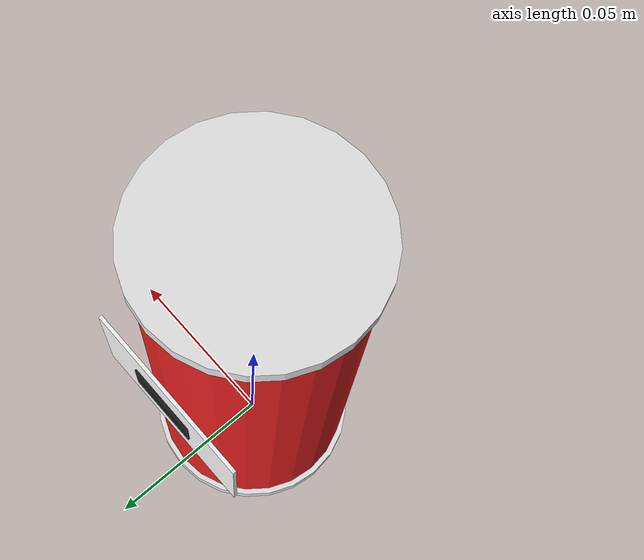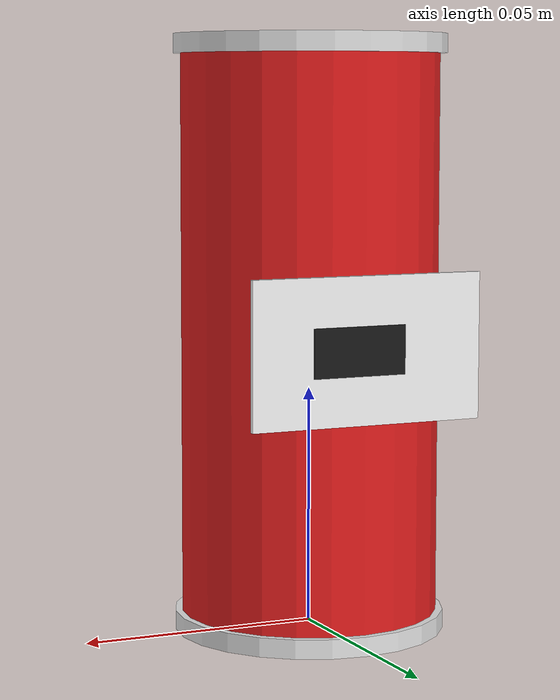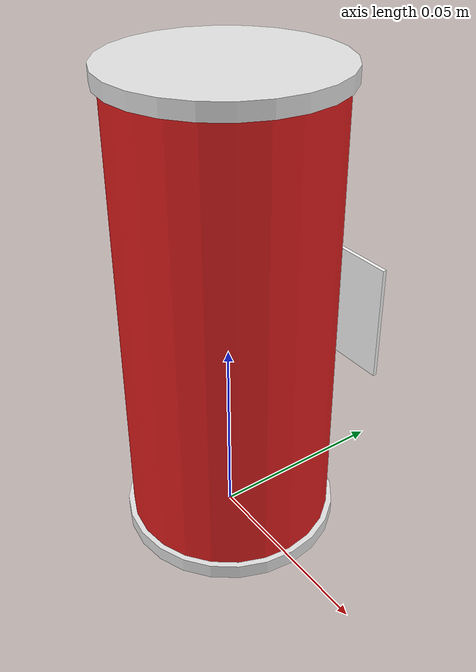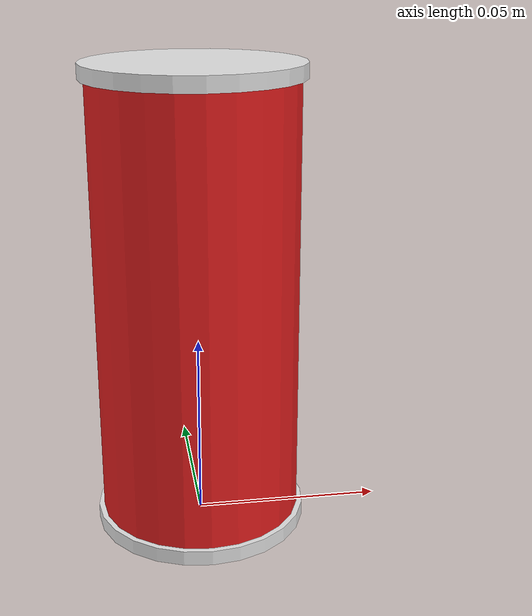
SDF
<?xml version="1.0"?>
<sdf version="1.6">
  <model name="trash_object_yellow">
    <static>false</static>
    <allow_auto_disable>false</allow_auto_disable>

    <link name="metal_can_link">
      <pose>0 0 0 0 0 0</pose>

      <inertial>
        <mass>0.08</mass>
        <inertia>
          <ixx>0.00005</ixx>
          <iyy>0.00005</iyy>
          <izz>0.00002</izz>
          <ixy>0</ixy>
          <ixz>0</ixz>
          <iyz>0</iyz>
        </inertia>
      </inertial>

      <collision name="can_collision">
        <pose>0 0 0.061 0 0 0</pose>
        <geometry>
          <cylinder>
            <radius>0.027</radius>
            <length>0.122</length>
          </cylinder>
        </geometry>
      </collision>

      <visual name="can_body_visual">
        <pose>0 0 0.061 0 0 0</pose>
        <geometry>
          <cylinder>
            <radius>0.027</radius>
            <length>0.122</length>
          </cylinder>
        </geometry>
        <material>
          <ambient>0.82 0.10 0.10 1.0</ambient>
          <diffuse>0.90 0.12 0.12 1.0</diffuse>
          <specular>0.95 0.95 0.95 1.0</specular>
        </material>
      </visual>

      <visual name="can_top_visual">
        <pose>0 0 0.122 0 0 0</pose>
        <geometry>
          <cylinder>
            <radius>0.0285</radius>
            <length>0.004</length>
          </cylinder>
        </geometry>
        <material>
          <ambient>0.85 0.85 0.85 1.0</ambient>
          <diffuse>0.90 0.90 0.90 1.0</diffuse>
          <specular>1.0 1.0 1.0 1.0</specular>
        </material>
      </visual>

      <visual name="can_bottom_visual">
        <pose>0 0 0.001 0 0 0</pose>
        <geometry>
          <cylinder>
            <radius>0.0285</radius>
            <length>0.004</length>
          </cylinder>
        </geometry>
        <material>
          <ambient>0.85 0.85 0.85 1.0</ambient>
          <diffuse>0.90 0.90 0.90 1.0</diffuse>
        </material>
      </visual>

      <visual name="can_label_white">
        <pose>0 0.0275 0.061 1.57079632679 0 0</pose>
        <geometry>
          <box>
            <size>0.050 0.030 0.001</size>
          </box>
        </geometry>
        <material>
          <ambient>0.98 0.98 0.98 1.0</ambient>
          <diffuse>0.98 0.98 0.98 1.0</diffuse>
        </material>
      </visual>

      <visual name="can_label_black">
        <pose>0.002 0.0280 0.061 1.57079632679 0 0</pose>
        <geometry>
          <box>
            <size>0.020 0.010 0.001</size>
          </box>
        </geometry>
        <material>
          <ambient>0.10 0.10 0.10 1.0</ambient>
          <diffuse>0.10 0.10 0.10 1.0</diffuse>
        </material>
      </visual>
    </link>
  </model>
</sdf>
